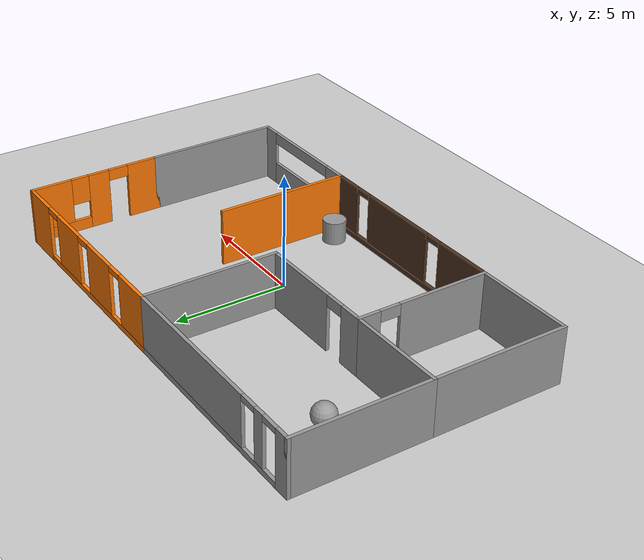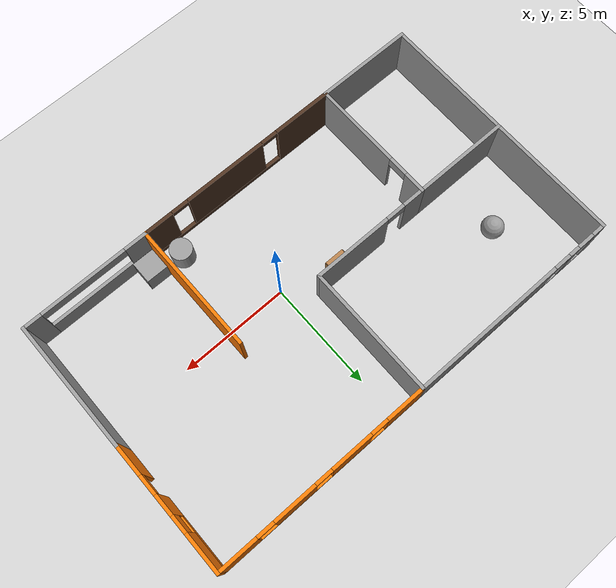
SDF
<sdf version="1.6">
 <world name="default">
  <light name="sun" type="directional">
   <pose>0 0 10 0 -0 0</pose>
   <diffuse>0.8 0.8 0.8 1</diffuse>
   <specular>0.2 0.2 0.2 1</specular>
   <attenuation>
    <range>1000</range>
    <constant>0.9</constant>
    <linear>0.01</linear>
    <quadratic>0.001</quadratic>
   </attenuation>
   <direction>-0.5 0.1 -0.9</direction>
  </light>
  <model name="ground_plane">
   <static>1</static>
   <link name="link">
    <collision name="collision">
     <geometry><plane><normal>0 0 1</normal><size>100 100</size></plane></geometry>
     <surface>
      <contact><collide_bitmask>65535</collide_bitmask></contact>
      <friction><ode><mu>100</mu><mu2>50</mu2></ode></friction>
     </surface>
    </collision>
    <visual name="visual">
     <cast_shadows>0</cast_shadows>
     <geometry><plane><normal>0 0 1</normal><size>100 100</size></plane></geometry>
     <material>
      <script><uri>file://media/materials/scripts/gazebo.material</uri><name>Gazebo/Grey</name></script>
     </material>
    </visual>
   </link>
  </model>
  <gravity>0 0 -9.8</gravity>
  <magnetic_field>6e-06 2.3e-05 -4.2e-05</magnetic_field>
  <atmosphere type="adiabatic"/>
  <physics name="default_physics" default="0" type="ode">
   <max_step_size>0.001</max_step_size>
   <real_time_factor>1</real_time_factor>
   <real_time_update_rate>1000</real_time_update_rate>
  </physics>
  <scene><ambient>0.4 0.4 0.4 1</ambient><background>0.7 0.7 0.7 1</background><shadows>1</shadows></scene>
  <audio><device>default</device></audio>
  <spherical_coordinates>
   <surface_model>EARTH_WGS84</surface_model>
   <latitude_deg>0</latitude_deg>
   <longitude_deg>0</longitude_deg>
   <elevation>0</elevation>
   <heading_deg>0</heading_deg>
  </spherical_coordinates>
  <model name="house_ver2">
   <pose>-1.13754 1.12028 0 0 -0 0</pose>
   <link name="Wall_1">
    <pose>9.85 2.925 0 0 -0 1.5708</pose>
    <visual name="Wall_1_Visual_0">
     <pose>-2.25472 0 1.25 0 -0 0</pose>
     <geometry><box><size>1.49056 0.15 2.5</size></box></geometry>
     <material>
      <script><uri>file://media/materials/scripts/gazebo.material</uri><name>Gazebo/Grey</name></script>
      <ambient>0.996078 0.47451 0.0196078 1</ambient>
     </material>
     <meta><layer>0</layer></meta>
    </visual>
    <collision name="Wall_1_Collision_0">
     <geometry><box><size>1.49056 0.15 2.5</size></box></geometry>
     <pose>-2.25472 0 1.25 0 -0 0</pose>
    </collision>
    <visual name="Wall_1_Visual_1">
     <pose>-0.129003 0 1.25 0 -0 0</pose>
     <geometry><box><size>0.96088 0.15 2.5</size></box></geometry>
     <material>
      <script><uri>file://media/materials/scripts/gazebo.material</uri><name>Gazebo/Grey</name></script>
      <ambient>0.996078 0.47451 0.0196078 1</ambient>
     </material>
     <meta><layer>0</layer></meta>
    </visual>
    <collision name="Wall_1_Collision_1">
     <geometry><box><size>0.96088 0.15 2.5</size></box></geometry>
     <pose>-0.129003 0 1.25 0 -0 0</pose>
    </collision>
    <visual name="Wall_1_Visual_2">
     <pose>1.67572 0 0.25 0 -0 0</pose>
     <geometry><box><size>2.64856 0.15 0.5</size></box></geometry>
     <material>
      <script><uri>file://media/materials/scripts/gazebo.material</uri><name>Gazebo/Grey</name></script>
      <ambient>0.996078 0.47451 0.0196078 1</ambient>
     </material>
     <meta><layer>0</layer></meta>
    </visual>
    <collision name="Wall_1_Collision_2">
     <geometry><box><size>2.64856 0.15 0.5</size></box></geometry>
     <pose>1.67572 0 0.25 0 -0 0</pose>
    </collision>
    <visual name="Wall_1_Visual_3">
     <pose>2.07572 0 1.5 0 -0 0</pose>
     <geometry><box><size>1.84856 0.15 2</size></box></geometry>
     <material>
      <script><uri>file://media/materials/scripts/gazebo.material</uri><name>Gazebo/Grey</name></script>
      <ambient>0.996078 0.47451 0.0196078 1</ambient>
     </material>
     <meta><layer>0</layer></meta>
    </visual>
    <collision name="Wall_1_Collision_3">
     <geometry><box><size>1.84856 0.15 2</size></box></geometry>
     <pose>2.07572 0 1.5 0 -0 0</pose>
    </collision>
    <visual name="Wall_1_Visual_4">
     <pose>0.751437 0 1.9 0 -0 0</pose>
     <geometry><box><size>0.8 0.15 1.2</size></box></geometry>
     <material>
      <script><uri>file://media/materials/scripts/gazebo.material</uri><name>Gazebo/Grey</name></script>
      <ambient>0.996078 0.47451 0.0196078 1</ambient>
     </material>
     <meta><layer>0</layer></meta>
    </visual>
    <collision name="Wall_1_Collision_4">
     <geometry><box><size>0.8 0.15 1.2</size></box></geometry>
     <pose>0.751437 0 1.9 0 -0 0</pose>
    </collision>
    <visual name="Wall_1_Visual_5">
     <pose>-1.05944 0 2.25 0 -0 0</pose>
     <geometry><box><size>0.9 0.15 0.5</size></box></geometry>
     <material>
      <script><uri>file://media/materials/scripts/gazebo.material</uri><name>Gazebo/Grey</name></script>
      <ambient>0.996078 0.47451 0.0196078 1</ambient>
     </material>
     <meta><layer>0</layer></meta>
    </visual>
    <collision name="Wall_1_Collision_5">
     <geometry><box><size>0.9 0.15 0.5</size></box></geometry>
     <pose>-1.05944 0 2.25 0 -0 0</pose>
    </collision>
   </link>
   <link name="Wall_10">
    <collision name="Wall_10_Collision">
     <geometry><box><size>4.5 0.15 2.5</size></box></geometry>
     <pose>0 0 1.25 0 -0 0</pose>
    </collision>
    <visual name="Wall_10_Visual">
     <pose>0 0 1.25 0 -0 0</pose>
     <geometry><box><size>4.5 0.15 2.5</size></box></geometry>
     <material>
      <script><uri>file://media/materials/scripts/gazebo.material</uri><name>Gazebo/Grey</name></script>
      <ambient>1 1 1 1</ambient>
     </material>
     <meta><layer>0</layer></meta>
    </visual>
    <pose>-7.675 -5.85 0 0 -0 0</pose>
   </link>
   <link name="Wall_12">
    <pose>-5.5 -2.925 0 0 -0 1.5708</pose>
    <visual name="Wall_12_Visual_0">
     <pose>-0.959949 0 1.25 0 -0 0</pose>
     <geometry><box><size>4.0801 0.15 2.5</size></box></geometry>
     <material>
      <script><uri>file://media/materials/scripts/gazebo.material</uri><name>Gazebo/Grey</name></script>
      <ambient>0.266667 0.266667 0.266667 1</ambient>
     </material>
     <meta><layer>0</layer></meta>
    </visual>
    <collision name="Wall_12_Collision_0">
     <geometry><box><size>4.0801 0.15 2.5</size></box></geometry>
     <pose>-0.959949 0 1.25 0 -0 0</pose>
    </collision>
    <visual name="Wall_12_Visual_1">
     <pose>2.49005 0 1.25 0 -0 0</pose>
     <geometry><box><size>1.0199 0.15 2.5</size></box></geometry>
     <material>
      <script><uri>file://media/materials/scripts/gazebo.material</uri><name>Gazebo/Grey</name></script>
      <ambient>0.266667 0.266667 0.266667 1</ambient>
     </material>
     <meta><layer>0</layer></meta>
    </visual>
    <collision name="Wall_12_Collision_1">
     <geometry><box><size>1.0199 0.15 2.5</size></box></geometry>
     <pose>2.49005 0 1.25 0 -0 0</pose>
    </collision>
    <visual name="Wall_12_Visual_2">
     <pose>1.5301 0 2.25 0 -0 0</pose>
     <geometry><box><size>0.9 0.15 0.5</size></box></geometry>
     <material>
      <script><uri>file://media/materials/scripts/gazebo.material</uri><name>Gazebo/Grey</name></script>
      <ambient>0.266667 0.266667 0.266667 1</ambient>
     </material>
     <meta><layer>0</layer></meta>
    </visual>
    <collision name="Wall_12_Collision_2">
     <geometry><box><size>0.9 0.15 0.5</size></box></geometry>
     <pose>1.5301 0 2.25 0 -0 0</pose>
    </collision>
   </link>
   <link name="Wall_14">
    <pose>-0.75 -5.85 0 0 -0 0</pose>
    <visual name="Wall_14_Visual_0">
     <pose>-3.43701 0 1.25 0 -0 0</pose>
     <geometry><box><size>2.77598 0.15 2.5</size></box></geometry>
     <material>
      <script><uri>file://media/materials/scripts/gazebo.material</uri><name>Gazebo/Grey</name></script>
      <ambient>0.313726 0.2 0.12549 1</ambient>
     </material>
     <meta><layer>0</layer></meta>
    </visual>
    <collision name="Wall_14_Collision_0">
     <geometry><box><size>2.77598 0.15 2.5</size></box></geometry>
     <pose>-3.43701 0 1.25 0 -0 0</pose>
    </collision>
    <visual name="Wall_14_Visual_1">
     <pose>1.38799 0 0.125 0 -0 0</pose>
     <geometry><box><size>6.87402 0.15 0.25</size></box></geometry>
     <material>
      <script><uri>file://media/materials/scripts/gazebo.material</uri><name>Gazebo/Grey</name></script>
      <ambient>0.313726 0.2 0.12549 1</ambient>
     </material>
     <meta><layer>0</layer></meta>
    </visual>
    <collision name="Wall_14_Collision_1">
     <geometry><box><size>6.87402 0.15 0.25</size></box></geometry>
     <pose>1.38799 0 0.125 0 -0 0</pose>
    </collision>
    <visual name="Wall_14_Visual_2">
     <pose>0.683904 0 1.375 0 -0 0</pose>
     <geometry><box><size>3.86584 0.15 2.25</size></box></geometry>
     <material>
      <script><uri>file://media/materials/scripts/gazebo.material</uri><name>Gazebo/Grey</name></script>
      <ambient>0.313726 0.2 0.12549 1</ambient>
     </material>
     <meta><layer>0</layer></meta>
    </visual>
    <collision name="Wall_14_Collision_2">
     <geometry><box><size>3.86584 0.15 2.25</size></box></geometry>
     <pose>0.683904 0 1.375 0 -0 0</pose>
    </collision>
    <visual name="Wall_14_Visual_3">
     <pose>4.12091 0 1.375 0 -0 0</pose>
     <geometry><box><size>1.40818 0.15 2.25</size></box></geometry>
     <material>
      <script><uri>file://media/materials/scripts/gazebo.material</uri><name>Gazebo/Grey</name></script>
      <ambient>0.313726 0.2 0.12549 1</ambient>
     </material>
     <meta><layer>0</layer></meta>
    </visual>
    <collision name="Wall_14_Collision_3">
     <geometry><box><size>1.40818 0.15 2.25</size></box></geometry>
     <pose>4.12091 0 1.375 0 -0 0</pose>
    </collision>
    <visual name="Wall_14_Visual_4">
     <pose>-1.64902 0 2.375 0 -0 0</pose>
     <geometry><box><size>0.8 0.15 0.25</size></box></geometry>
     <material>
      <script><uri>file://media/materials/scripts/gazebo.material</uri><name>Gazebo/Grey</name></script>
      <ambient>0.313726 0.2 0.12549 1</ambient>
     </material>
     <meta><layer>0</layer></meta>
    </visual>
    <collision name="Wall_14_Collision_4">
     <geometry><box><size>0.8 0.15 0.25</size></box></geometry>
     <pose>-1.64902 0 2.375 0 -0 0</pose>
    </collision>
    <visual name="Wall_14_Visual_5">
     <pose>3.01682 0 2.375 0 -0 0</pose>
     <geometry><box><size>0.8 0.15 0.25</size></box></geometry>
     <material>
      <script><uri>file://media/materials/scripts/gazebo.material</uri><name>Gazebo/Grey</name></script>
      <ambient>0.313726 0.2 0.12549 1</ambient>
     </material>
     <meta><layer>0</layer></meta>
    </visual>
    <collision name="Wall_14_Collision_5">
     <geometry><box><size>0.8 0.15 0.25</size></box></geometry>
     <pose>3.01682 0 2.375 0 -0 0</pose>
    </collision>
   </link>
   <link name="Wall_16">
    <collision name="Wall_16_Collision">
     <geometry><box><size>6 0.15 2.5</size></box></geometry>
     <pose>0 0 1.25 0 -0 0</pose>
    </collision>
    <visual name="Wall_16_Visual">
     <pose>0 0 1.25 0 -0 0</pose>
     <geometry><box><size>6 0.15 2.5</size></box></geometry>
     <material>
      <script><uri>file://media/materials/scripts/gazebo.material</uri><name>Gazebo/Grey</name></script>
      <ambient>0.188235 0.188235 0.188235 1</ambient>
     </material>
     <meta><layer>0</layer></meta>
    </visual>
    <pose>9.85 -2.925 0 0 -0 -1.5708</pose>
   </link>
   <link name="Wall_17">
    <pose>6.925 -5.85 0 0 -0 3.14159</pose>
    <visual name="Wall_17_Visual_0">
     <pose>-2.54843 0 1.25 0 -0 0</pose>
     <geometry><box><size>0.903147 0.15 2.5</size></box></geometry>
     <material>
      <script><uri>file://media/materials/scripts/gazebo.material</uri><name>Gazebo/Grey</name></script>
      <ambient>0.188235 0.188235 0.188235 1</ambient>
     </material>
     <meta><layer>0</layer></meta>
    </visual>
    <collision name="Wall_17_Collision_0">
     <geometry><box><size>0.903147 0.15 2.5</size></box></geometry>
     <pose>-2.54843 0 1.25 0 -0 0</pose>
    </collision>
    <visual name="Wall_17_Visual_1">
     <pose>0.451573 0 0.5 0 -0 0</pose>
     <geometry><box><size>5.09685 0.15 1</size></box></geometry>
     <material>
      <script><uri>file://media/materials/scripts/gazebo.material</uri><name>Gazebo/Grey</name></script>
      <ambient>0.188235 0.188235 0.188235 1</ambient>
     </material>
     <meta><layer>0</layer></meta>
    </visual>
    <collision name="Wall_17_Collision_1">
     <geometry><box><size>5.09685 0.15 1</size></box></geometry>
     <pose>0.451573 0 0.5 0 -0 0</pose>
    </collision>
    <visual name="Wall_17_Visual_2">
     <pose>2.45157 0 1.75 0 -0 0</pose>
     <geometry><box><size>1.09685 0.15 1.5</size></box></geometry>
     <material>
      <script><uri>file://media/materials/scripts/gazebo.material</uri><name>Gazebo/Grey</name></script>
      <ambient>0.188235 0.188235 0.188235 1</ambient>
     </material>
     <meta><layer>0</layer></meta>
    </visual>
    <collision name="Wall_17_Collision_2">
     <geometry><box><size>1.09685 0.15 1.5</size></box></geometry>
     <pose>2.45157 0 1.75 0 -0 0</pose>
    </collision>
    <visual name="Wall_17_Visual_3">
     <pose>-0.096853 0 2.25 0 -0 0</pose>
     <geometry><box><size>4 0.15 0.5</size></box></geometry>
     <material>
      <script><uri>file://media/materials/scripts/gazebo.material</uri><name>Gazebo/Grey</name></script>
      <ambient>0.188235 0.188235 0.188235 1</ambient>
     </material>
     <meta><layer>0</layer></meta>
    </visual>
    <collision name="Wall_17_Collision_3">
     <geometry><box><size>4 0.15 0.5</size></box></geometry>
     <pose>-0.096853 0 2.25 0 -0 0</pose>
    </collision>
   </link>
   <link name="Wall_19">
    <collision name="Wall_19_Collision">
     <geometry><box><size>6 0.15 2.5</size></box></geometry>
     <pose>0 0 1.25 0 -0 0</pose>
    </collision>
    <visual name="Wall_19_Visual">
     <pose>0 0 1.25 0 -0 0</pose>
     <geometry><box><size>6 0.15 2.5</size></box></geometry>
     <material>
      <script><uri>file://media/materials/scripts/gazebo.material</uri><name>Gazebo/Grey</name></script>
      <ambient>0.996078 0.47451 0.0196078 1</ambient>
     </material>
     <meta><layer>0</layer></meta>
    </visual>
    <pose>4 -2.925 0 0 -0 1.5708</pose>
   </link>
   <link name="Wall_22">
    <collision name="Wall_22_Collision">
     <geometry><box><size>4.5 0.15 2.5</size></box></geometry>
     <pose>0 0 1.25 0 -0 0</pose>
    </collision>
    <visual name="Wall_22_Visual">
     <pose>0 0 1.25 0 -0 0</pose>
     <geometry><box><size>4.5 0.15 2.5</size></box></geometry>
     <material>
      <script><uri>file://media/materials/scripts/gazebo.material</uri><name>Gazebo/Grey</name></script>
      <ambient>0.266667 0.266667 0.266667 1</ambient>
     </material>
     <meta><layer>0</layer></meta>
    </visual>
    <pose>-7.675 -0 0 0 -0 3.14159</pose>
   </link>
   <link name="Wall_26">
    <pose>4.925 5.85 0 0 -0 3.14159</pose>
    <visual name="Wall_26_Visual_0">
     <pose>-4.06719 0 1.25 0 -0 0</pose>
     <geometry><box><size>1.86561 0.15 2.5</size></box></geometry>
     <material>
      <script><uri>file://media/materials/scripts/gazebo.material</uri><name>Gazebo/Grey</name></script>
      <ambient>0.996078 0.47451 0.0196078 1</ambient>
     </material>
     <meta><layer>0</layer></meta>
    </visual>
    <collision name="Wall_26_Collision_0">
     <geometry><box><size>1.86561 0.15 2.5</size></box></geometry>
     <pose>-4.06719 0 1.25 0 -0 0</pose>
    </collision>
    <visual name="Wall_26_Visual_1">
     <pose>0.932806 0 0.125 0 -0 0</pose>
     <geometry><box><size>8.13439 0.15 0.25</size></box></geometry>
     <material>
      <script><uri>file://media/materials/scripts/gazebo.material</uri><name>Gazebo/Grey</name></script>
      <ambient>0.996078 0.47451 0.0196078 1</ambient>
     </material>
     <meta><layer>0</layer></meta>
    </visual>
    <collision name="Wall_26_Collision_1">
     <geometry><box><size>8.13439 0.15 0.25</size></box></geometry>
     <pose>0.932806 0 0.125 0 -0 0</pose>
    </collision>
    <visual name="Wall_26_Visual_2">
     <pose>-1.35673 0 1.375 0 -0 0</pose>
     <geometry><box><size>1.95531 0.15 2.25</size></box></geometry>
     <material>
      <script><uri>file://media/materials/scripts/gazebo.material</uri><name>Gazebo/Grey</name></script>
      <ambient>0.996078 0.47451 0.0196078 1</ambient>
     </material>
     <meta><layer>0</layer></meta>
    </visual>
    <collision name="Wall_26_Collision_2">
     <geometry><box><size>1.95531 0.15 2.25</size></box></geometry>
     <pose>-1.35673 0 1.375 0 -0 0</pose>
    </collision>
    <visual name="Wall_26_Visual_3">
     <pose>1.38524 0 1.375 0 -0 0</pose>
     <geometry><box><size>1.92863 0.15 2.25</size></box></geometry>
     <material>
      <script><uri>file://media/materials/scripts/gazebo.material</uri><name>Gazebo/Grey</name></script>
      <ambient>0.996078 0.47451 0.0196078 1</ambient>
     </material>
     <meta><layer>0</layer></meta>
    </visual>
    <collision name="Wall_26_Collision_3">
     <geometry><box><size>1.92863 0.15 2.25</size></box></geometry>
     <pose>1.38524 0 1.375 0 -0 0</pose>
    </collision>
    <visual name="Wall_26_Visual_4">
     <pose>4.07478 0 1.375 0 -0 0</pose>
     <geometry><box><size>1.85045 0.15 2.25</size></box></geometry>
     <material>
      <script><uri>file://media/materials/scripts/gazebo.material</uri><name>Gazebo/Grey</name></script>
      <ambient>0.996078 0.47451 0.0196078 1</ambient>
     </material>
     <meta><layer>0</layer></meta>
    </visual>
    <collision name="Wall_26_Collision_4">
     <geometry><box><size>1.85045 0.15 2.25</size></box></geometry>
     <pose>4.07478 0 1.375 0 -0 0</pose>
    </collision>
    <visual name="Wall_26_Visual_5">
     <pose>-2.73439 0 2.375 0 -0 0</pose>
     <geometry><box><size>0.8 0.15 0.25</size></box></geometry>
     <material>
      <script><uri>file://media/materials/scripts/gazebo.material</uri><name>Gazebo/Grey</name></script>
      <ambient>0.996078 0.47451 0.0196078 1</ambient>
     </material>
     <meta><layer>0</layer></meta>
    </visual>
    <collision name="Wall_26_Collision_5">
     <geometry><box><size>0.8 0.15 0.25</size></box></geometry>
     <pose>-2.73439 0 2.375 0 -0 0</pose>
    </collision>
    <visual name="Wall_26_Visual_6">
     <pose>0.020925 0 2.375 0 -0 0</pose>
     <geometry><box><size>0.8 0.15 0.25</size></box></geometry>
     <material>
      <script><uri>file://media/materials/scripts/gazebo.material</uri><name>Gazebo/Grey</name></script>
      <ambient>0.996078 0.47451 0.0196078 1</ambient>
     </material>
     <meta><layer>0</layer></meta>
    </visual>
    <collision name="Wall_26_Collision_6">
     <geometry><box><size>0.8 0.15 0.25</size></box></geometry>
     <pose>0.020925 0 2.375 0 -0 0</pose>
    </collision>
    <visual name="Wall_26_Visual_7">
     <pose>2.74955 0 2.375 0 -0 0</pose>
     <geometry><box><size>0.8 0.15 0.25</size></box></geometry>
     <material>
      <script><uri>file://media/materials/scripts/gazebo.material</uri><name>Gazebo/Grey</name></script>
      <ambient>0.996078 0.47451 0.0196078 1</ambient>
     </material>
     <meta><layer>0</layer></meta>
    </visual>
    <collision name="Wall_26_Collision_7">
     <geometry><box><size>0.8 0.15 0.25</size></box></geometry>
     <pose>2.74955 0 2.375 0 -0 0</pose>
    </collision>
   </link>
   <link name="Wall_27">
    <collision name="Wall_27_Collision">
     <geometry><box><size>6 0.15 2.5</size></box></geometry>
     <pose>0 0 1.25 0 -0 0</pose>
    </collision>
    <visual name="Wall_27_Visual">
     <pose>0 0 1.25 0 -0 0</pose>
     <geometry><box><size>6 0.15 2.5</size></box></geometry>
     <material>
      <script><uri>file://media/materials/scripts/gazebo.material</uri><name>Gazebo/Grey</name></script>
      <ambient>0.266667 0.266667 0.266667 1</ambient>
     </material>
     <meta><layer>0</layer></meta>
    </visual>
    <pose>0 2.925 0 0 -0 -1.5708</pose>
   </link>
   <link name="Wall_28">
    <pose>-2.75 -0 0 0 -0 3.14159</pose>
    <visual name="Wall_28_Visual_0">
     <pose>-0.984354 0 1.25 0 -0 0</pose>
     <geometry><box><size>3.68129 0.15 2.5</size></box></geometry>
     <material>
      <script><uri>file://media/materials/scripts/gazebo.material</uri><name>Gazebo/Grey</name></script>
      <ambient>0.266667 0.266667 0.266667 1</ambient>
     </material>
     <meta><layer>0</layer></meta>
    </visual>
    <collision name="Wall_28_Collision_0">
     <geometry><box><size>3.68129 0.15 2.5</size></box></geometry>
     <pose>-0.984354 0 1.25 0 -0 0</pose>
    </collision>
    <visual name="Wall_28_Visual_1">
     <pose>2.29065 0 1.25 0 -0 0</pose>
     <geometry><box><size>1.06871 0.15 2.5</size></box></geometry>
     <material>
      <script><uri>file://media/materials/scripts/gazebo.material</uri><name>Gazebo/Grey</name></script>
      <ambient>0.266667 0.266667 0.266667 1</ambient>
     </material>
     <meta><layer>0</layer></meta>
    </visual>
    <collision name="Wall_28_Collision_1">
     <geometry><box><size>1.06871 0.15 2.5</size></box></geometry>
     <pose>2.29065 0 1.25 0 -0 0</pose>
    </collision>
    <visual name="Wall_28_Visual_2">
     <pose>1.30629 0 2.25 0 -0 0</pose>
     <geometry><box><size>0.9 0.15 0.5</size></box></geometry>
     <material>
      <script><uri>file://media/materials/scripts/gazebo.material</uri><name>Gazebo/Grey</name></script>
      <ambient>0.266667 0.266667 0.266667 1</ambient>
     </material>
     <meta><layer>0</layer></meta>
    </visual>
    <collision name="Wall_28_Collision_2">
     <geometry><box><size>0.9 0.15 0.5</size></box></geometry>
     <pose>1.30629 0 2.25 0 -0 0</pose>
    </collision>
   </link>
   <link name="Wall_30">
    <pose>-4.925 5.85 0 0 -0 0</pose>
    <visual name="Wall_30_Visual_0">
     <pose>-4.66131 0 1.25 0 -0 0</pose>
     <geometry><box><size>0.677388 0.15 2.5</size></box></geometry>
     <material>
      <script><uri>file://media/materials/scripts/gazebo.material</uri><name>Gazebo/Grey</name></script>
      <ambient>0.266667 0.266667 0.266667 1</ambient>
     </material>
     <meta><layer>0</layer></meta>
    </visual>
    <collision name="Wall_30_Collision_0">
     <geometry><box><size>0.677388 0.15 2.5</size></box></geometry>
     <pose>-4.66131 0 1.25 0 -0 0</pose>
    </collision>
    <visual name="Wall_30_Visual_1">
     <pose>0.338694 0 0.125 0 -0 0</pose>
     <geometry><box><size>9.32261 0.15 0.25</size></box></geometry>
     <material>
      <script><uri>file://media/materials/scripts/gazebo.material</uri><name>Gazebo/Grey</name></script>
      <ambient>0.266667 0.266667 0.266667 1</ambient>
     </material>
     <meta><layer>0</layer></meta>
    </visual>
    <collision name="Wall_30_Collision_1">
     <geometry><box><size>9.32261 0.15 0.25</size></box></geometry>
     <pose>0.338694 0 0.125 0 -0 0</pose>
    </collision>
    <visual name="Wall_30_Visual_2">
     <pose>-3.26461 0 1.375 0 -0 0</pose>
     <geometry><box><size>0.516 0.15 2.25</size></box></geometry>
     <material>
      <script><uri>file://media/materials/scripts/gazebo.material</uri><name>Gazebo/Grey</name></script>
      <ambient>0.266667 0.266667 0.266667 1</ambient>
     </material>
     <meta><layer>0</layer></meta>
    </visual>
    <collision name="Wall_30_Collision_2">
     <geometry><box><size>0.516 0.15 2.25</size></box></geometry>
     <pose>-3.26461 0 1.375 0 -0 0</pose>
    </collision>
    <visual name="Wall_30_Visual_3">
     <pose>1.39669 0 1.375 0 -0 0</pose>
     <geometry><box><size>7.20661 0.15 2.25</size></box></geometry>
     <material>
      <script><uri>file://media/materials/scripts/gazebo.material</uri><name>Gazebo/Grey</name></script>
      <ambient>0.266667 0.266667 0.266667 1</ambient>
     </material>
     <meta><layer>0</layer></meta>
    </visual>
    <collision name="Wall_30_Collision_3">
     <geometry><box><size>7.20661 0.15 2.25</size></box></geometry>
     <pose>1.39669 0 1.375 0 -0 0</pose>
    </collision>
    <visual name="Wall_30_Visual_4">
     <pose>-3.92261 0 2.375 0 -0 0</pose>
     <geometry><box><size>0.8 0.15 0.25</size></box></geometry>
     <material>
      <script><uri>file://media/materials/scripts/gazebo.material</uri><name>Gazebo/Grey</name></script>
      <ambient>0.266667 0.266667 0.266667 1</ambient>
     </material>
     <meta><layer>0</layer></meta>
    </visual>
    <collision name="Wall_30_Collision_4">
     <geometry><box><size>0.8 0.15 0.25</size></box></geometry>
     <pose>-3.92261 0 2.375 0 -0 0</pose>
    </collision>
    <visual name="Wall_30_Visual_5">
     <pose>-2.60661 0 2.375 0 -0 0</pose>
     <geometry><box><size>0.8 0.15 0.25</size></box></geometry>
     <material>
      <script><uri>file://media/materials/scripts/gazebo.material</uri><name>Gazebo/Grey</name></script>
      <ambient>0.266667 0.266667 0.266667 1</ambient>
     </material>
     <meta><layer>0</layer></meta>
    </visual>
    <collision name="Wall_30_Collision_5">
     <geometry><box><size>0.8 0.15 0.25</size></box></geometry>
     <pose>-2.60661 0 2.375 0 -0 0</pose>
    </collision>
   </link>
   <link name="Wall_5">
    <collision name="Wall_5_Collision">
     <geometry><box><size>6 0.15 2.5</size></box></geometry>
     <pose>0 0 1.25 0 -0 0</pose>
    </collision>
    <visual name="Wall_5_Visual">
     <pose>0 0 1.25 0 -0 0</pose>
     <geometry><box><size>6 0.15 2.5</size></box></geometry>
     <material>
      <script><uri>file://media/materials/scripts/gazebo.material</uri><name>Gazebo/Grey</name></script>
      <ambient>0.266667 0.266667 0.266667 1</ambient>
     </material>
     <meta><layer>0</layer></meta>
    </visual>
    <pose>-9.85 2.925 0 0 -0 -1.5708</pose>
   </link>
   <link name="Wall_9">
    <collision name="Wall_9_Collision">
     <geometry><box><size>6 0.15 2.5</size></box></geometry>
     <pose>0 0 1.25 0 -0 0</pose>
    </collision>
    <visual name="Wall_9_Visual">
     <pose>0 0 1.25 0 -0 0</pose>
     <geometry><box><size>6 0.15 2.5</size></box></geometry>
     <material>
      <script><uri>file://media/materials/scripts/gazebo.material</uri><name>Gazebo/Grey</name></script>
      <ambient>0.266667 0.266667 0.266667 1</ambient>
     </material>
     <meta><layer>0</layer></meta>
    </visual>
    <pose>-9.85 -2.925 0 0 -0 -1.5708</pose>
   </link>
   <static>1</static>
  </model>
  <model name="beer">
   <link name="link">
    <pose>0 0 0.115 0 -0 0</pose>
    <inertial>
     <mass>0.39</mass>
     <inertia><ixx>0.00058</ixx><ixy>0</ixy><ixz>0</ixz><iyy>0.00058</iyy><iyz>0</iyz><izz>0.00019</izz></inertia>
    </inertial>
    <collision name="collision">
     <geometry><cylinder><radius>0.055</radius><length>0.23</length></cylinder></geometry>
    </collision>
    <visual name="visual">
     <geometry><cylinder><radius>0.055</radius><length>0.23</length></cylinder></geometry>
     <material>
      <script>
       <uri>model://beer/materials/scripts</uri>
       <uri>model://beer/materials/textures</uri>
       <name>Beer/Diffuse</name>
      </script>
     </material>
    </visual>
   </link>
   <pose>-10.7051 0.807062 -7e-06 -0 -0 -1e-05</pose>
  </model>
  <model name="beer_0">
   <link name="link">
    <pose>0 0 0.115 0 -0 0</pose>
    <inertial>
     <mass>0.39</mass>
     <inertia><ixx>0.00058</ixx><ixy>0</ixy><ixz>0</ixz><iyy>0.00058</iyy><iyz>0</iyz><izz>0.00019</izz></inertia>
    </inertial>
    <collision name="collision">
     <geometry><cylinder><radius>0.055</radius><length>0.23</length></cylinder></geometry>
    </collision>
    <visual name="visual">
     <geometry><cylinder><radius>0.055</radius><length>0.23</length></cylinder></geometry>
     <material>
      <script>
       <uri>model://beer/materials/scripts</uri>
       <uri>model://beer/materials/textures</uri>
       <name>Beer/Diffuse</name>
      </script>
     </material>
    </visual>
   </link>
   <pose>-10.5252 0.843244 -2e-06 1e-06 -0 -9e-06</pose>
  </model>
  <model name="beer_1">
   <link name="link">
    <pose>0 0 0.115 0 -0 0</pose>
    <inertial>
     <mass>0.39</mass>
     <inertia><ixx>0.00058</ixx><ixy>0</ixy><ixz>0</ixz><iyy>0.00058</iyy><iyz>0</iyz><izz>0.00019</izz></inertia>
    </inertial>
    <collision name="collision">
     <geometry><cylinder><radius>0.055</radius><length>0.23</length></cylinder></geometry>
    </collision>
    <visual name="visual">
     <geometry><cylinder><radius>0.055</radius><length>0.23</length></cylinder></geometry>
     <material>
      <script>
       <uri>model://beer/materials/scripts</uri>
       <uri>model://beer/materials/textures</uri>
       <name>Beer/Diffuse</name>
      </script>
     </material>
    </visual>
   </link>
   <pose>-10.6741 0.56136 -7e-06 -1e-06 -0 -8e-06</pose>
  </model>
  <model name="unit_box">
   <pose>3.44042 -4.14683 0.499995 -0 1e-05 -0.005851</pose>
   <link name="link">
    <inertial>
     <mass>1</mass>
     <inertia>
      <ixx>0.166667</ixx>
      <ixy>0</ixy>
      <ixz>0</ixz>
      <iyy>0.166667</iyy>
      <iyz>0</iyz>
      <izz>0.166667</izz>
     </inertia>
    </inertial>
    <collision name="collision"><geometry><box><size>1 1 1</size></box></geometry></collision>
    <visual name="visual">
     <geometry><box><size>1 1 1</size></box></geometry>
     <material>
      <script><name>Gazebo/Grey</name><uri>file://media/materials/scripts/gazebo.material</uri></script>
     </material>
    </visual>
   </link>
  </model>
  <model name="unit_sphere">
   <pose>-8.48761 3.82919 0.5 0 -0 0</pose>
   <link name="link">
    <inertial>
     <mass>1</mass>
     <inertia><ixx>0.1</ixx><ixy>0</ixy><ixz>0</ixz><iyy>0.1</iyy><iyz>0</iyz><izz>0.1</izz></inertia>
    </inertial>
    <collision name="collision"><geometry><sphere><radius>0.5</radius></sphere></geometry></collision>
    <visual name="visual">
     <geometry><sphere><radius>0.5</radius></sphere></geometry>
     <material>
      <script><name>Gazebo/Grey</name><uri>file://media/materials/scripts/gazebo.material</uri></script>
     </material>
    </visual>
   </link>
  </model>
  <model name="unit_cylinder">
   <pose>2.05329 -3.89245 0.499992 -3e-06 -4e-06 -0</pose>
   <link name="link">
    <inertial>
     <mass>1</mass>
     <inertia><ixx>0.145833</ixx><ixy>0</ixy><ixz>0</ixz><iyy>0.145833</iyy><iyz>0</iyz><izz>0.125</izz></inertia>
    </inertial>
    <collision name="collision">
     <geometry><cylinder><radius>0.5</radius><length>1</length></cylinder></geometry>
    </collision>
    <visual name="visual">
     <geometry><cylinder><radius>0.5</radius><length>1</length></cylinder></geometry>
     <material>
      <script><name>Gazebo/Grey</name><uri>file://media/materials/scripts/gazebo.material</uri></script>
     </material>
    </visual>
   </link>
  </model>
  <model name="bookshelf">
   <static>1</static>
   <link name="link">
    <inertial><mass>1</mass></inertial>
    <collision name="back">
     <pose>0 0.005 0.6 0 -0 0</pose>
     <geometry><box><size>0.9 0.01 1.2</size></box></geometry>
    </collision>
    <visual name="visual1">
     <pose>0 0.005 0.6 0 -0 0</pose>
     <geometry><box><size>0.9 0.01 1.2</size></box></geometry>
     <material>
      <script><uri>file://media/materials/scripts/gazebo.material</uri><name>Gazebo/Wood</name></script>
     </material>
    </visual>
    <collision name="left_side">
     <pose>0.45 -0.195 0.6 0 -0 0</pose>
     <geometry><box><size>0.02 0.4 1.2</size></box></geometry>
    </collision>
    <visual name="visual2">
     <pose>0.45 -0.195 0.6 0 -0 0</pose>
     <geometry><box><size>0.02 0.4 1.2</size></box></geometry>
     <material>
      <script><uri>file://media/materials/scripts/gazebo.material</uri><name>Gazebo/Wood</name></script>
     </material>
    </visual>
    <collision name="right_side">
     <pose>-0.45 -0.195 0.6 0 -0 0</pose>
     <geometry><box><size>0.02 0.4 1.2</size></box></geometry>
    </collision>
    <visual name="visual3">
     <pose>-0.45 -0.195 0.6 0 -0 0</pose>
     <geometry><box><size>0.02 0.4 1.2</size></box></geometry>
     <material>
      <script><uri>file://media/materials/scripts/gazebo.material</uri><name>Gazebo/Wood</name></script>
     </material>
    </visual>
    <collision name="bottom">
     <pose>0 -0.195 0.03 0 -0 0</pose>
     <geometry><box><size>0.88 0.4 0.06</size></box></geometry>
    </collision>
    <visual name="visual4">
     <pose>0 -0.195 0.03 0 -0 0</pose>
     <geometry><box><size>0.88 0.4 0.06</size></box></geometry>
     <material>
      <script><uri>file://media/materials/scripts/gazebo.material</uri><name>Gazebo/Wood</name></script>
     </material>
    </visual>
    <collision name="top">
     <pose>0 -0.195 1.19 0 -0 0</pose>
     <geometry><box><size>0.88 0.4 0.02</size></box></geometry>
    </collision>
    <visual name="visual5">
     <pose>0 -0.195 1.19 0 -0 0</pose>
     <geometry><box><size>0.88 0.4 0.02</size></box></geometry>
     <material>
      <script><uri>file://media/materials/scripts/gazebo.material</uri><name>Gazebo/Wood</name></script>
     </material>
    </visual>
    <collision name="low_shelf">
     <pose>0 -0.195 0.43 0 -0 0</pose>
     <geometry><box><size>0.88 0.4 0.02</size></box></geometry>
    </collision>
    <visual name="visual6">
     <pose>0 -0.195 0.43 0 -0 0</pose>
     <geometry><box><size>0.88 0.4 0.02</size></box></geometry>
     <material>
      <script><uri>file://media/materials/scripts/gazebo.material</uri><name>Gazebo/Wood</name></script>
     </material>
    </visual>
    <collision name="high_shelf">
     <pose>0 -0.195 0.8 0 -0 0</pose>
     <geometry><box><size>0.88 0.4 0.02</size></box></geometry>
    </collision>
    <visual name="visual7">
     <pose>0 -0.195 0.8 0 -0 0</pose>
     <geometry><box><size>0.88 0.4 0.02</size></box></geometry>
     <material>
      <script><uri>file://media/materials/scripts/gazebo.material</uri><name>Gazebo/Wood</name></script>
     </material>
    </visual>
   </link>
   <pose>-2.4231 0.950819 0 0 -0 0</pose>
  </model>
 </world>
</sdf>
